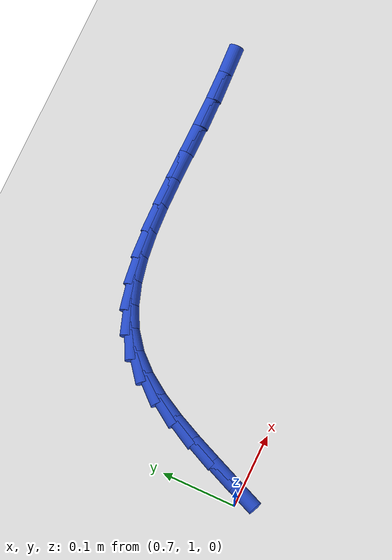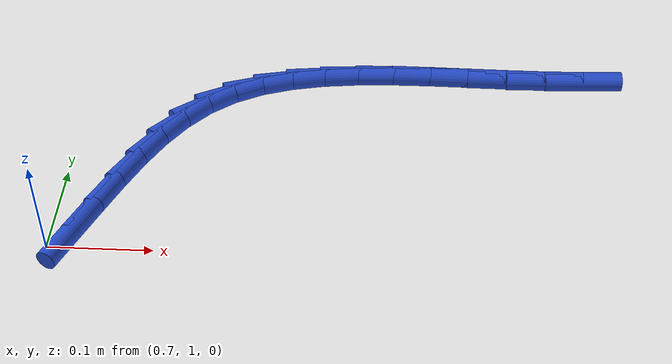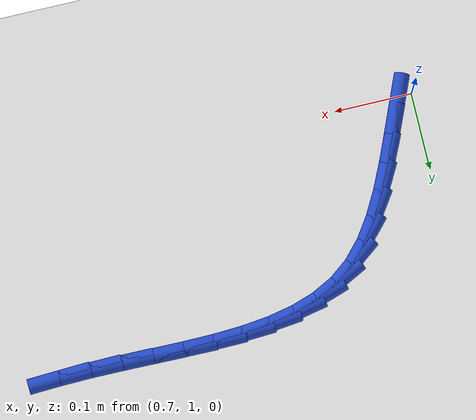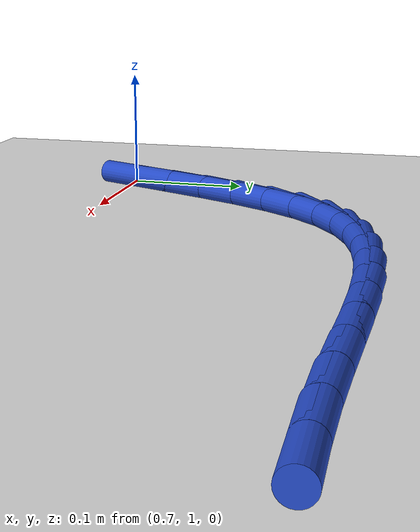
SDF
<sdf version="1.6">
 <world name="default">
  <model name="ground_plane">
   <static>1</static>
   <link name="link">
    <collision name="collision">
     <geometry><plane><normal>0 0 1</normal><size>100 100</size></plane></geometry>
     <surface><friction><ode><mu>100</mu><mu2>50</mu2></ode></friction></surface>
    </collision>
    <visual name="visual">
     <cast_shadows>0</cast_shadows>
     <geometry><plane><normal>0 0 1</normal><size>100 100</size></plane></geometry>
     <material>
      <script><uri>file://media/materials/scripts/gazebo.material</uri><name>Gazebo/WhiteGlow</name></script>
     </material>
    </visual>
   </link>
  </model>
  <model name="line">
   <link name="link_36">
    <pose>0.7222447692543656 1.0110831756675907 0.01 0 1.57 1.1692013526739744</pose>
    <collision name="collision">
     <geometry><cylinder><radius>0.01</radius><length>0.08</length></cylinder></geometry>
    </collision>
    <visual name="visual">
     <material>
      <script><name>Gazebo/Blue</name><uri>file://media/materials/scripts/gazebo.material</uri></script>
     </material>
     <geometry><cylinder><radius>0.01</radius><length>0.08</length></cylinder></geometry>
    </visual>
   </link>
   <link name="link_37">
    <pose>0.7372060765409374 1.0463132278003195 0.01 0 1.57 1.1613577813072005</pose>
    <collision name="collision">
     <geometry><cylinder><radius>0.01</radius><length>0.08</length></cylinder></geometry>
    </collision>
    <visual name="visual">
     <material>
      <script><name>Gazebo/Blue</name><uri>file://media/materials/scripts/gazebo.material</uri></script>
     </material>
     <geometry><cylinder><radius>0.01</radius><length>0.08</length></cylinder></geometry>
    </visual>
   </link>
   <link name="link_38">
    <pose>0.7522248247813071 1.0809215210517662 0.01 0 1.57 1.1279669004457198</pose>
    <collision name="collision">
     <geometry><cylinder><radius>0.01</radius><length>0.08</length></cylinder></geometry>
    </collision>
    <visual name="visual">
     <material>
      <script><name>Gazebo/Blue</name><uri>file://media/materials/scripts/gazebo.material</uri></script>
     </material>
     <geometry><cylinder><radius>0.01</radius><length>0.08</length></cylinder></geometry>
    </visual>
   </link>
   <link name="link_39">
    <pose>0.767940725929293 1.1140605345610102 0.01 0 1.57 1.0654519811790344</pose>
    <collision name="collision">
     <geometry><cylinder><radius>0.01</radius><length>0.08</length></cylinder></geometry>
    </collision>
    <visual name="visual">
     <material>
      <script><name>Gazebo/Blue</name><uri>file://media/materials/scripts/gazebo.material</uri></script>
     </material>
     <geometry><cylinder><radius>0.01</radius><length>0.08</length></cylinder></geometry>
    </visual>
   </link>
   <link name="link_40">
    <pose>0.7849934919387125 1.1448827474671301 0.01 0 1.57 0.9681520278842968</pose>
    <collision name="collision">
     <geometry><cylinder><radius>0.01</radius><length>0.08</length></cylinder></geometry>
    </collision>
    <visual name="visual">
     <material>
      <script><name>Gazebo/Blue</name><uri>file://media/materials/scripts/gazebo.material</uri></script>
     </material>
     <geometry><cylinder><radius>0.01</radius><length>0.08</length></cylinder></geometry>
    </visual>
   </link>
   <link name="link_41">
    <pose>0.804022834763384 1.1725406389092055 0.01 0 1.57 0.8295369154258269</pose>
    <collision name="collision">
     <geometry><cylinder><radius>0.01</radius><length>0.08</length></cylinder></geometry>
    </collision>
    <visual name="visual">
     <material>
      <script><name>Gazebo/Blue</name><uri>file://media/materials/scripts/gazebo.material</uri></script>
     </material>
     <geometry><cylinder><radius>0.01</radius><length>0.08</length></cylinder></geometry>
    </visual>
   </link>
   <link name="link_42">
    <pose>0.8256684663571259 1.1961866880263161 0.01 0 1.57 0.6493707266785183</pose>
    <collision name="collision">
     <geometry><cylinder><radius>0.01</radius><length>0.08</length></cylinder></geometry>
    </collision>
    <visual name="visual">
     <material>
      <script><name>Gazebo/Blue</name><uri>file://media/materials/scripts/gazebo.material</uri></script>
     </material>
     <geometry><cylinder><radius>0.01</radius><length>0.08</length></cylinder></geometry>
    </visual>
   </link>
   <link name="link_43">
    <pose>0.8505169869506801 1.21505198146899 0.01 0 1.57 0.46808149278677075</pose>
    <collision name="collision">
     <geometry><cylinder><radius>0.01</radius><length>0.08</length></cylinder></geometry>
    </collision>
    <visual name="visual">
     <material>
      <script><name>Gazebo/Blue</name><uri>file://media/materials/scripts/gazebo.material</uri></script>
     </material>
     <geometry><cylinder><radius>0.01</radius><length>0.08</length></cylinder></geometry>
    </visual>
   </link>
   <link name="link_44">
    <pose>0.8785695521231768 1.2292340877958894 0.01 0 1.57 0.31695342697430634</pose>
    <collision name="collision">
     <geometry><cylinder><radius>0.01</radius><length>0.08</length></cylinder></geometry>
    </collision>
    <visual name="visual">
     <material>
      <script><name>Gazebo/Blue</name><uri>file://media/materials/scripts/gazebo.material</uri></script>
     </material>
     <geometry><cylinder><radius>0.01</radius><length>0.08</length></cylinder></geometry>
    </visual>
   </link>
   <link name="link_45">
    <pose>0.9094642617387013 1.2393679127979207 0.01 0 1.57 0.19896759945817444</pose>
    <collision name="collision">
     <geometry><cylinder><radius>0.01</radius><length>0.08</length></cylinder></geometry>
    </collision>
    <visual name="visual">
     <material>
      <script><name>Gazebo/Blue</name><uri>file://media/materials/scripts/gazebo.material</uri></script>
     </material>
     <geometry><cylinder><radius>0.01</radius><length>0.08</length></cylinder></geometry>
    </visual>
   </link>
   <link name="link_46">
    <pose>0.9428337901564282 1.2460963922340405 0.01 0 1.57 0.11133038069278822</pose>
    <collision name="collision">
     <geometry><cylinder><radius>0.01</radius><length>0.08</length></cylinder></geometry>
    </collision>
    <visual name="visual">
     <material>
      <script><name>Gazebo/Blue</name><uri>file://media/materials/scripts/gazebo.material</uri></script>
     </material>
     <geometry><cylinder><radius>0.01</radius><length>0.08</length></cylinder></geometry>
    </visual>
   </link>
   <link name="link_47">
    <pose>0.9783108117355317 1.2500624618632068 0.01 0 1.57 0.049576083820147436</pose>
    <collision name="collision">
     <geometry><cylinder><radius>0.01</radius><length>0.08</length></cylinder></geometry>
    </collision>
    <visual name="visual">
     <material>
      <script><name>Gazebo/Blue</name><uri>file://media/materials/scripts/gazebo.material</uri></script>
     </material>
     <geometry><cylinder><radius>0.01</radius><length>0.08</length></cylinder></geometry>
    </visual>
   </link>
   <link name="link_48">
    <pose>1.015528000835186 1.251909057444377 0.01 0 1.57 0.009589159173276</pose>
    <collision name="collision">
     <geometry><cylinder><radius>0.01</radius><length>0.08</length></cylinder></geometry>
    </collision>
    <visual name="visual">
     <material>
      <script><name>Gazebo/Blue</name><uri>file://media/materials/scripts/gazebo.material</uri></script>
     </material>
     <geometry><cylinder><radius>0.01</radius><length>0.08</length></cylinder></geometry>
    </visual>
   </link>
   <link name="link_49">
    <pose>1.054118031814565 1.2522791147365089 0.01 0 1.57 -0.011706469422779921</pose>
    <collision name="collision">
     <geometry><cylinder><radius>0.01</radius><length>0.08</length></cylinder></geometry>
    </collision>
    <visual name="visual">
     <material>
      <script><name>Gazebo/Blue</name><uri>file://media/materials/scripts/gazebo.material</uri></script>
     </material>
     <geometry><cylinder><radius>0.01</radius><length>0.08</length></cylinder></geometry>
    </visual>
   </link>
   <link name="link_50">
    <pose>1.0937135790328436 1.2518155694985595 0.01 0 1.57 -0.016258851315477024</pose>
    <collision name="collision">
     <geometry><cylinder><radius>0.01</radius><length>0.08</length></cylinder></geometry>
    </collision>
    <visual name="visual">
     <material>
      <script><name>Gazebo/Blue</name><uri>file://media/materials/scripts/gazebo.material</uri></script>
     </material>
     <geometry><cylinder><radius>0.01</radius><length>0.08</length></cylinder></geometry>
    </visual>
   </link>
   <link name="link_51">
    <pose>1.133947316849196 1.2511613574894864 0.01 0 1.57 -0.004985639512612113</pose>
    <collision name="collision">
     <geometry><cylinder><radius>0.01</radius><length>0.08</length></cylinder></geometry>
    </collision>
    <visual name="visual">
     <material>
      <script><name>Gazebo/Blue</name><uri>file://media/materials/scripts/gazebo.material</uri></script>
     </material>
     <geometry><cylinder><radius>0.01</radius><length>0.08</length></cylinder></geometry>
    </visual>
   </link>
   <link name="link_52">
    <pose>1.1744519196227958 1.2509594144682472 0.01 0 1.57 0.02177195839776627</pose>
    <collision name="collision">
     <geometry><cylinder><radius>0.01</radius><length>0.08</length></cylinder></geometry>
    </collision>
    <visual name="visual">
     <material>
      <script><name>Gazebo/Blue</name><uri>file://media/materials/scripts/gazebo.material</uri></script>
     </material>
     <geometry><cylinder><radius>0.01</radius><length>0.08</length></cylinder></geometry>
    </visual>
   </link>
   <link name="link_53">
    <pose>1.2148598769473091 1.251839313867884 0.01 0 1.57 0.046858813639401704</pose>
    <collision name="collision">
     <geometry><cylinder><radius>0.01</radius><length>0.08</length></cylinder></geometry>
    </collision>
    <visual name="visual">
     <material>
      <script><name>Gazebo/Blue</name><uri>file://media/materials/scripts/gazebo.material</uri></script>
     </material>
     <geometry><cylinder><radius>0.01</radius><length>0.08</length></cylinder></geometry>
    </visual>
   </link>
  </model>
 </world>
</sdf>
